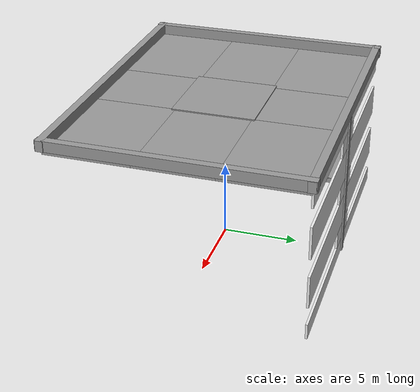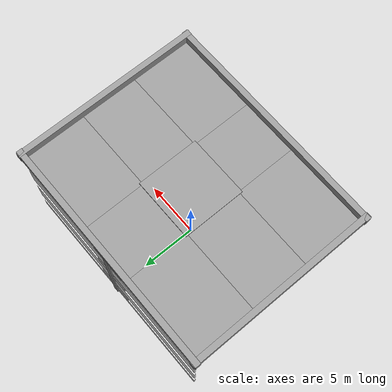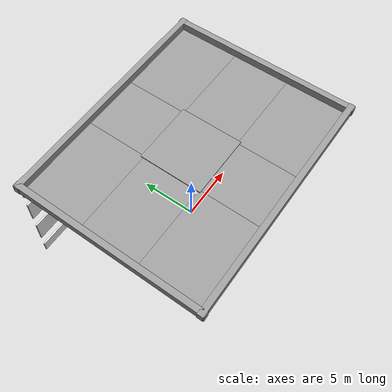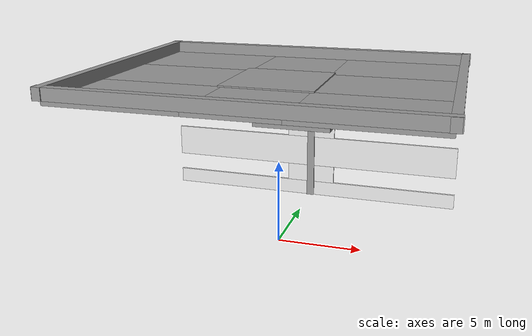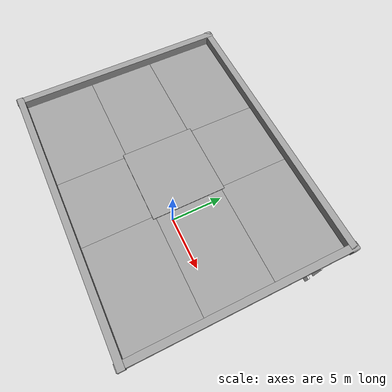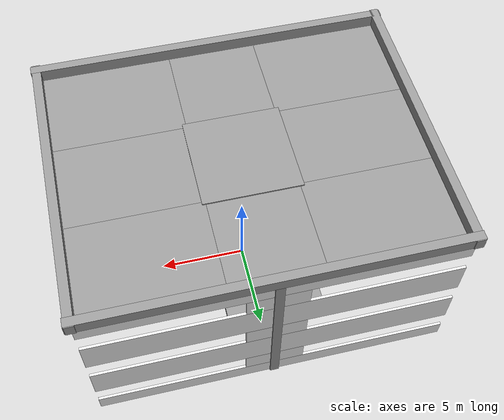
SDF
<sdf version="1.7">
 <world name="default">
  <model name="building_shell">
   <static>1</static>
   <link name="wNsb0_0">
    <pose>0 8 0.5 0 0 0</pose>
    <collision name="c"><geometry><box><size>20 0.15 1</size></box></geometry></collision>
    <visual name="v">
     <geometry><box><size>20 0.15 1</size></box></geometry>
     <material>
      <script><uri>file://media/materials/scripts/Gazebo.material</uri><name>Gazebo/White</name></script>
     </material>
    </visual>
   </link>
   <link name="wNsb1_0">
    <pose>0 8 3.25 0 0 0</pose>
    <collision name="c"><geometry><box><size>20 0.15 2.1</size></box></geometry></collision>
    <visual name="v">
     <geometry><box><size>20 0.15 2.1</size></box></geometry>
     <material>
      <script><uri>file://media/materials/scripts/Gazebo.material</uri><name>Gazebo/White</name></script>
     </material>
    </visual>
   </link>
   <link name="wNsb2_0">
    <pose>0 8 6.55 0 0 0</pose>
    <collision name="c"><geometry><box><size>20 0.15 2.1</size></box></geometry></collision>
    <visual name="v">
     <geometry><box><size>20 0.15 2.1</size></box></geometry>
     <material>
      <script><uri>file://media/materials/scripts/Gazebo.material</uri><name>Gazebo/White</name></script>
     </material>
    </visual>
   </link>
   <link name="wNsb3_0">
    <pose>0 8 9.35 0 0 0</pose>
    <collision name="c"><geometry><box><size>20 0.15 1.1</size></box></geometry></collision>
    <visual name="v">
     <geometry><box><size>20 0.15 1.1</size></box></geometry>
     <material>
      <script><uri>file://media/materials/scripts/Gazebo.material</uri><name>Gazebo/White</name></script>
     </material>
    </visual>
   </link>
   <link name="wNm0_2">
    <pose>0 8 1.6 0 0 0</pose>
    <collision name="c"><geometry><box><size>3.3 0.15 1.2</size></box></geometry></collision>
    <visual name="v">
     <geometry><box><size>3.3 0.15 1.2</size></box></geometry>
     <material>
      <script><uri>file://media/materials/scripts/Gazebo.material</uri><name>Gazebo/White</name></script>
     </material>
    </visual>
   </link>
   <link name="wNm1_2">
    <pose>0 8 4.9 0 0 0</pose>
    <collision name="c"><geometry><box><size>3.3 0.15 1.2</size></box></geometry></collision>
    <visual name="v">
     <geometry><box><size>3.3 0.15 1.2</size></box></geometry>
     <material>
      <script><uri>file://media/materials/scripts/Gazebo.material</uri><name>Gazebo/White</name></script>
     </material>
    </visual>
   </link>
   <link name="wNm2_2">
    <pose>0 8 8.2 0 0 0</pose>
    <collision name="c"><geometry><box><size>3.3 0.15 1.2</size></box></geometry></collision>
    <visual name="v">
     <geometry><box><size>3.3 0.15 1.2</size></box></geometry>
     <material>
      <script><uri>file://media/materials/scripts/Gazebo.material</uri><name>Gazebo/White</name></script>
     </material>
    </visual>
   </link>
   <link name="wNpil0">
    <pose>0 8 4.95 0 0 0</pose>
    <collision name="c"><geometry><box><size>0.5 0.35 9.9</size></box></geometry></collision>
    <visual name="v">
     <geometry><box><size>0.5 0.35 9.9</size></box></geometry>
     <material>
      <script><uri>file://media/materials/scripts/Gazebo.material</uri><name>Gazebo/Grey</name></script>
     </material>
    </visual>
   </link>
  </model>
  <model name="building_L3">
   <static>1</static>
   <link name="floor2_8">
    <pose>0 5.25 6.45 0 0 0</pose>
    <collision name="c"><geometry><box><size>5 5.5 0.3</size></box></geometry></collision>
    <visual name="v">
     <geometry><box><size>5 5.5 0.3</size></box></geometry>
     <material>
      <script><uri>file://media/materials/scripts/Gazebo.material</uri><name>Gazebo/Grey</name></script>
     </material>
    </visual>
   </link>
   <link name="floor2c_8">
    <pose>0 5.25 6.61 0 0 0</pose>
    <collision name="c"><geometry><box><size>5 5.5 0.02</size></box></geometry></collision>
    <visual name="v">
     <geometry><box><size>5 5.5 0.02</size></box></geometry>
     <material>
      <script><uri>file://media/materials/scripts/Gazebo.material</uri><name>Gazebo/Grey</name></script>
     </material>
    </visual>
   </link>
   <link name="w2_0_1">
    <pose>1 4 8.05 0 0 0</pose>
    <collision name="c"><geometry><box><size>2.9 0.15 2.9</size></box></geometry></collision>
    <visual name="v">
     <geometry><box><size>2.9 0.15 2.9</size></box></geometry>
     <material>
      <script><uri>file://media/materials/scripts/Gazebo.material</uri><name>Gazebo/White</name></script>
     </material>
    </visual>
   </link>
  </model>
  <model name="building_roof">
   <static>1</static>
   <link name="roof_0">
    <pose>-6.25 -5.25 9.75 0 0 0</pose>
    <collision name="c"><geometry><box><size>7.5 5.5 0.3</size></box></geometry></collision>
    <visual name="v">
     <geometry><box><size>7.5 5.5 0.3</size></box></geometry>
     <material>
      <script><uri>file://media/materials/scripts/Gazebo.material</uri><name>Gazebo/Grey</name></script>
     </material>
    </visual>
   </link>
   <link name="roof_1">
    <pose>-6.25 0 9.75 0 0 0</pose>
    <collision name="c"><geometry><box><size>7.5 5 0.3</size></box></geometry></collision>
    <visual name="v">
     <geometry><box><size>7.5 5 0.3</size></box></geometry>
     <material>
      <script><uri>file://media/materials/scripts/Gazebo.material</uri><name>Gazebo/Grey</name></script>
     </material>
    </visual>
   </link>
   <link name="roof_2">
    <pose>-6.25 5.25 9.75 0 0 0</pose>
    <collision name="c"><geometry><box><size>7.5 5.5 0.3</size></box></geometry></collision>
    <visual name="v">
     <geometry><box><size>7.5 5.5 0.3</size></box></geometry>
     <material>
      <script><uri>file://media/materials/scripts/Gazebo.material</uri><name>Gazebo/Grey</name></script>
     </material>
    </visual>
   </link>
   <link name="roof_3">
    <pose>0 -5.25 9.75 0 0 0</pose>
    <collision name="c"><geometry><box><size>5 5.5 0.3</size></box></geometry></collision>
    <visual name="v">
     <geometry><box><size>5 5.5 0.3</size></box></geometry>
     <material>
      <script><uri>file://media/materials/scripts/Gazebo.material</uri><name>Gazebo/Grey</name></script>
     </material>
    </visual>
   </link>
   <link name="roof_4">
    <pose>0 5.25 9.75 0 0 0</pose>
    <collision name="c"><geometry><box><size>5 5.5 0.3</size></box></geometry></collision>
    <visual name="v">
     <geometry><box><size>5 5.5 0.3</size></box></geometry>
     <material>
      <script><uri>file://media/materials/scripts/Gazebo.material</uri><name>Gazebo/Grey</name></script>
     </material>
    </visual>
   </link>
   <link name="roof_5">
    <pose>6.25 -5.25 9.75 0 0 0</pose>
    <collision name="c"><geometry><box><size>7.5 5.5 0.3</size></box></geometry></collision>
    <visual name="v">
     <geometry><box><size>7.5 5.5 0.3</size></box></geometry>
     <material>
      <script><uri>file://media/materials/scripts/Gazebo.material</uri><name>Gazebo/Grey</name></script>
     </material>
    </visual>
   </link>
   <link name="roof_6">
    <pose>6.25 0 9.75 0 0 0</pose>
    <collision name="c"><geometry><box><size>7.5 5 0.3</size></box></geometry></collision>
    <visual name="v">
     <geometry><box><size>7.5 5 0.3</size></box></geometry>
     <material>
      <script><uri>file://media/materials/scripts/Gazebo.material</uri><name>Gazebo/Grey</name></script>
     </material>
    </visual>
   </link>
   <link name="roof_7">
    <pose>6.25 5.25 9.75 0 0 0</pose>
    <collision name="c"><geometry><box><size>7.5 5.5 0.3</size></box></geometry></collision>
    <visual name="v">
     <geometry><box><size>7.5 5.5 0.3</size></box></geometry>
     <material>
      <script><uri>file://media/materials/scripts/Gazebo.material</uri><name>Gazebo/Grey</name></script>
     </material>
    </visual>
   </link>
   <link name="skylight">
    <pose>0 0 9.95 0 0 0</pose>
    <collision name="c"><geometry><box><size>5.4 5.4 0.08</size></box></geometry></collision>
    <visual name="v">
     <geometry><box><size>5.4 5.4 0.08</size></box></geometry>
     <material>
      <script><uri>file://media/materials/scripts/Gazebo.material</uri><name>Gazebo/Grey</name></script>
     </material>
    </visual>
   </link>
   <link name="parapet08.0">
    <pose>0 8 10.25 0 0 0</pose>
    <collision name="c"><geometry><box><size>20.6 0.5 0.7</size></box></geometry></collision>
    <visual name="v">
     <geometry><box><size>20.6 0.5 0.7</size></box></geometry>
     <material>
      <script><uri>file://media/materials/scripts/Gazebo.material</uri><name>Gazebo/Grey</name></script>
     </material>
    </visual>
   </link>
   <link name="parapet0-8.0">
    <pose>0 -8 10.25 0 0 0</pose>
    <collision name="c"><geometry><box><size>20.6 0.5 0.7</size></box></geometry></collision>
    <visual name="v">
     <geometry><box><size>20.6 0.5 0.7</size></box></geometry>
     <material>
      <script><uri>file://media/materials/scripts/Gazebo.material</uri><name>Gazebo/Grey</name></script>
     </material>
    </visual>
   </link>
   <link name="parapet10.00">
    <pose>10 0 10.25 0 0 0</pose>
    <collision name="c"><geometry><box><size>0.5 16.6 0.7</size></box></geometry></collision>
    <visual name="v">
     <geometry><box><size>0.5 16.6 0.7</size></box></geometry>
     <material>
      <script><uri>file://media/materials/scripts/Gazebo.material</uri><name>Gazebo/Grey</name></script>
     </material>
    </visual>
   </link>
   <link name="parapet-10.00">
    <pose>-10 0 10.25 0 0 0</pose>
    <collision name="c"><geometry><box><size>0.5 16.6 0.7</size></box></geometry></collision>
    <visual name="v">
     <geometry><box><size>0.5 16.6 0.7</size></box></geometry>
     <material>
      <script><uri>file://media/materials/scripts/Gazebo.material</uri><name>Gazebo/Grey</name></script>
     </material>
    </visual>
   </link>
  </model>
 </world>
</sdf>
